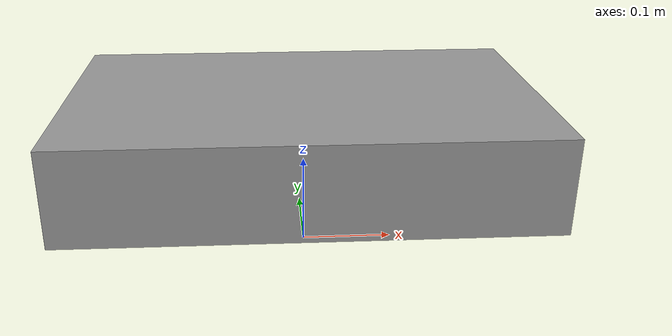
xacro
<?xml version="1.0"?>
<robot xmlns:xacro="http://www.ros.org/wiki/xacro">

  <!-- Base footprint: massless ground projection link -->
  <link name="base_footprint"/>

  <joint name="base_footprint_joint" type="fixed">
    <parent link="base_footprint"/>
    <child link="base_link"/>
    <origin xyz="0 0 0.08" rpy="0 0 0"/>
  </joint>

  <!-- Base link: main chassis body -->
  <link name="base_link">
    <visual>
      <origin xyz="0 0 0.05" rpy="0 0 0"/>
      <geometry>
        <box size="0.50 0.30 0.10"/>
      </geometry>
      <material name="chassis_grey"/>
    </visual>
    <collision>
      <origin xyz="0 0 0.05" rpy="0 0 0"/>
      <geometry>
        <box size="0.52 0.38 0.14"/>
      </geometry>
    </collision>
    <inertial>
      <origin xyz="0 0 0.05" rpy="0 0 0"/>
      <mass value="8.0"/>
      <inertia ixx="0.066667" ixy="0.0" ixz="0.0"
               iyy="0.173333" iyz="0.0"
               izz="0.226667"/>
    </inertial>
  </link>

  <gazebo reference="base_link">
    <material>Gazebo/DarkGrey</material>
    <mu1>0.8</mu1>
    <mu2>0.8</mu2>
    <kp>10000000.0</kp>
    <kd>10.0</kd>
    <minDepth>0.002</minDepth>
    <maxVel>0.01</maxVel>
  </gazebo>

</robot>
